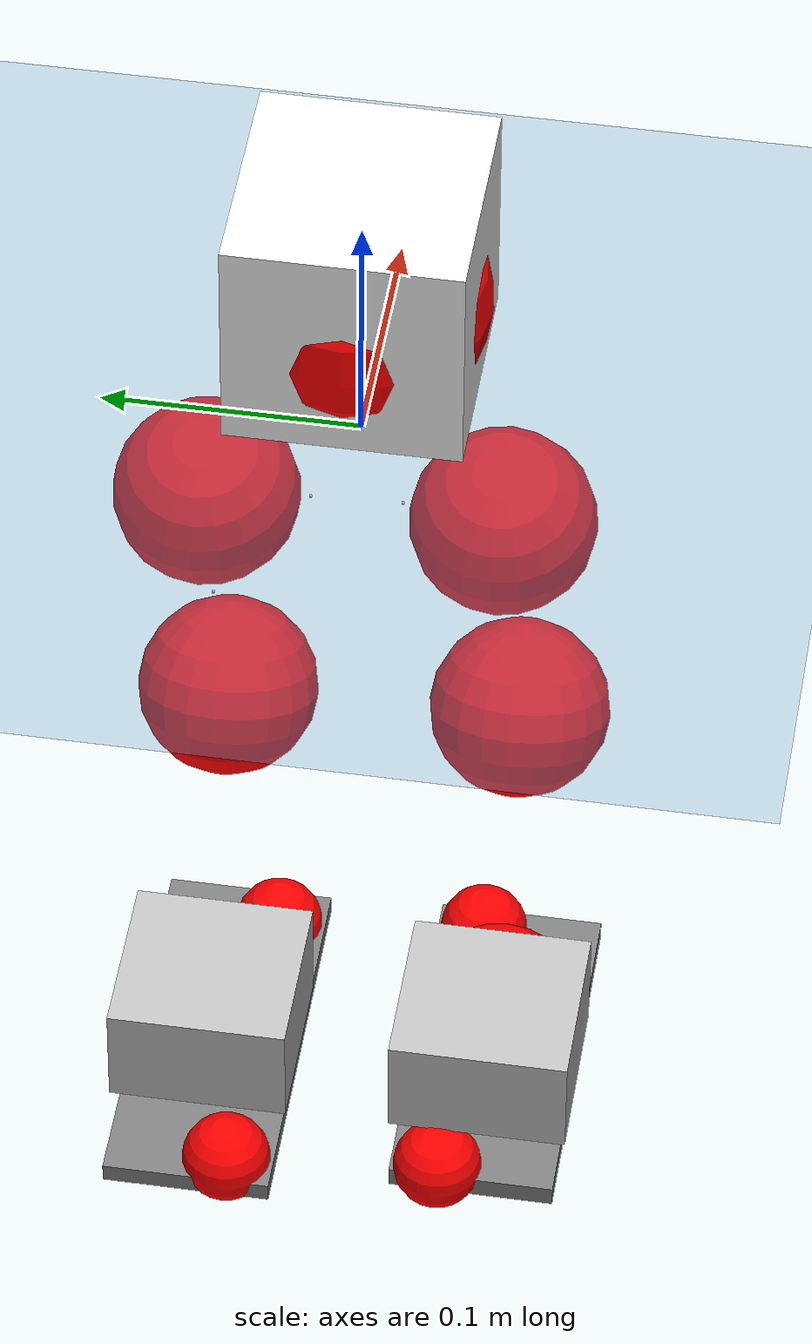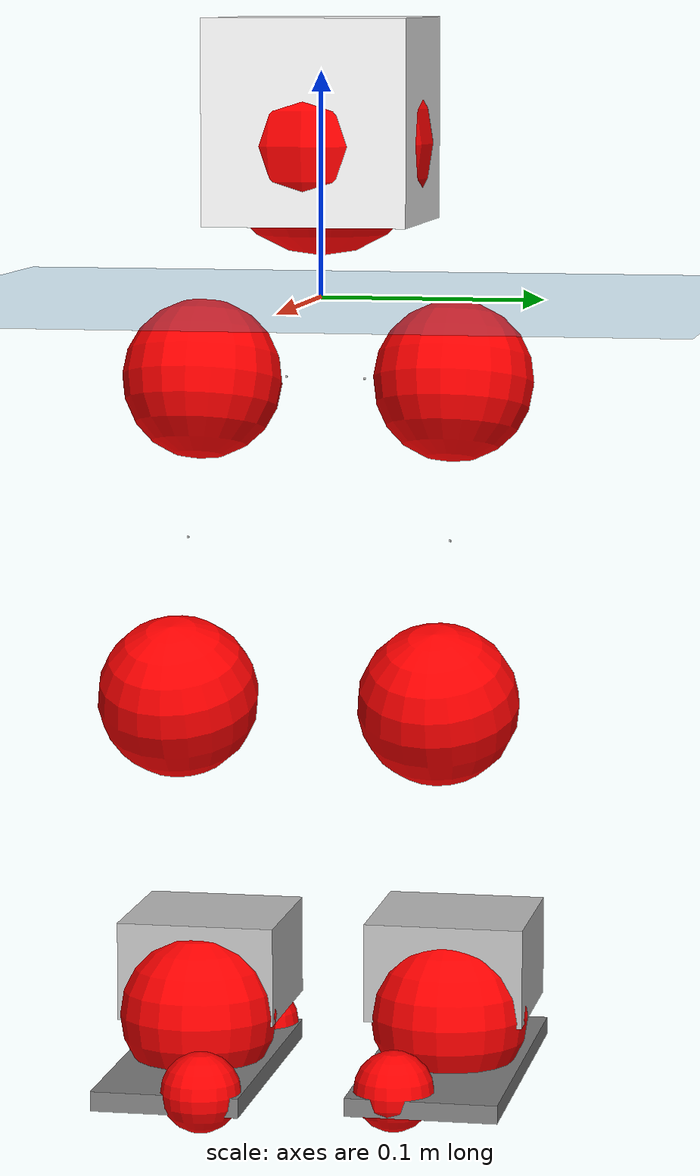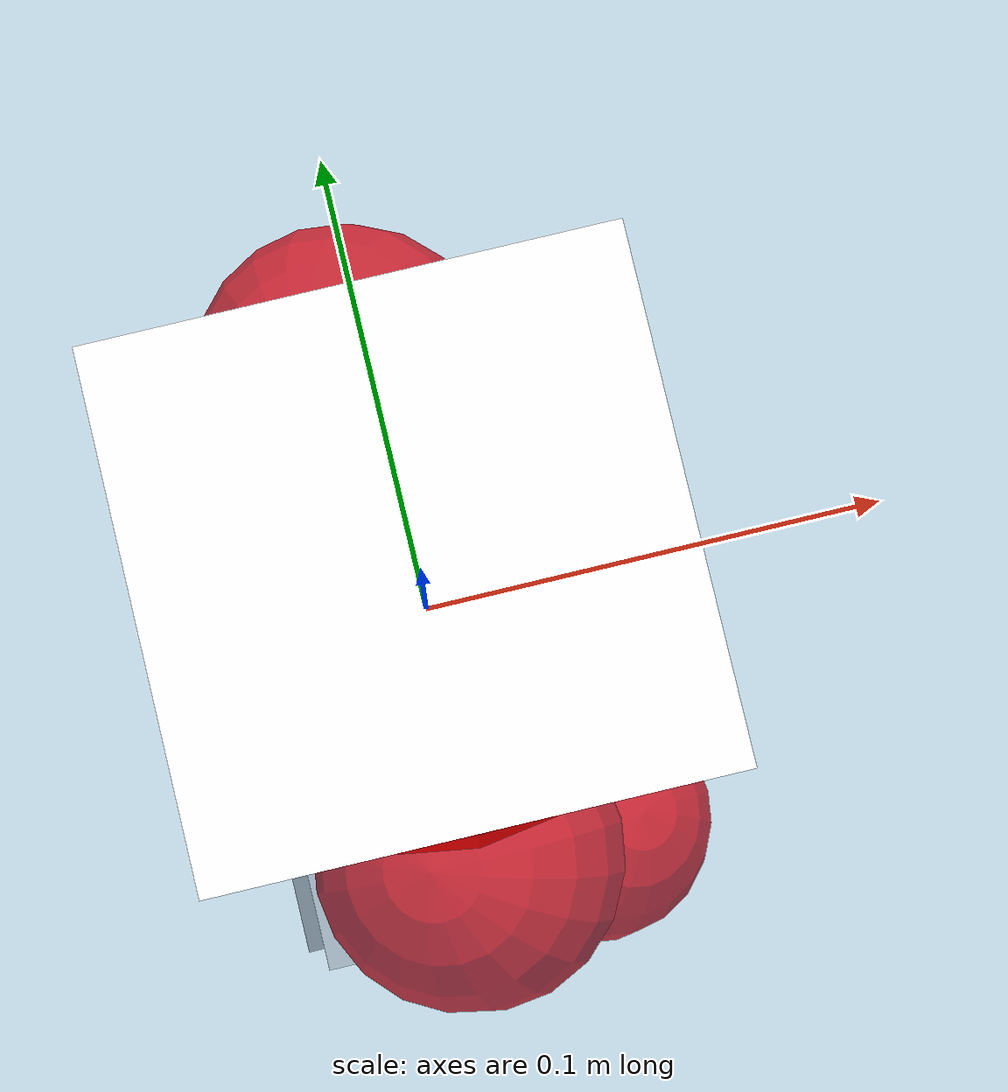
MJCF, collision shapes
<mujoco model="pi_12dof_release_v1">
  <compiler angle="radian" assetdir="assets" balanceinertia="true" inertiafromgeom="false"/>

  <option timestep="0.005" density="1.2" viscosity="2e-05"/>

  <size nkey="1"/>

  <visual>
    <quality shadowsize="8192"/>
    <map shadowclip="0.5"/>
  </visual>

  <default>
    <default class="/">
      <joint armature="0.01" damping="0.01" frictionloss="0.01"/>
      <geom contype="0" conaffinity="0" group="1" solref="-1000 -80"/>
      <site size="0.01 0.005 0.005" group="5"/>
      <general forcelimited="true" biastype="affine" gainprm="20" biasprm="0 -20 -0.5"/>
      <default class="foot">
        <geom size="0.0845 0.036 0.005" type="box" condim="6" group="4" priority="1" friction="0.9 0.2 0.2" solimp="0.015 1 0.005"/>
      </default>
      <default class="reward_collision_sphere">
        <geom group="5" rgba="1 0 0 1"/>
      </default>
    </default>
  </default>

  <asset>
    <texture type="skybox" colorspace="auto" name="//unnamed_texture_0" builtin="gradient" rgb1="0.95 0.95 0.95" rgb2="0.95 0.95 0.95" width="100" height="600"/>
    <texture type="2d" colorspace="auto" name="texplane" builtin="checker" rgb1="0.345 0.575 0.748" rgb2="0.345 0.575 0.748" markrgb="1 1 1" width="512" height="512"/>
    <material name="MatPlane" class="/" texture="texplane" texuniform="true" texrepeat="2 2" specular="0.9"/>
    <mesh name="baselink_1" class="/" file="baselink_1.STL"/>
    <mesh name="r_hip_pitch_link" class="/" file="r_hip_pitch_link.STL"/>
    <mesh name="r_hip_roll_link" class="/" file="r_hip_roll_link.STL"/>
    <mesh name="r_thigh_link" class="/" file="r_thigh_link.STL"/>
    <mesh name="r_calf_link" class="/" file="r_calf_link.STL"/>
    <mesh name="r_ankle_pitch_link" class="/" file="r_ankle_pitch_link.STL"/>
    <mesh name="r_ankle_roll_link" class="/" file="r_ankle_roll_link.STL"/>
    <mesh name="l_hip_pitch_link" class="/" file="l_hip_pitch_link.STL"/>
    <mesh name="l_hip_roll_link" class="/" file="l_hip_roll_link.STL"/>
    <mesh name="l_thigh_link" class="/" file="l_thigh_link.STL"/>
    <mesh name="l_calf_link" class="/" file="l_calf_link.STL"/>
    <mesh name="l_ankle_pitch_link" class="/" file="l_ankle_pitch_link.STL"/>
    <mesh name="l_ankle_roll_link" class="/" file="l_ankle_roll_link.STL"/>
  </asset>

  <worldbody>
    <geom name="floor" class="/" size="100 100 0.125" type="plane" group="0" material="MatPlane"/>
    <light name="toplight_shadow" class="/" pos="0 0 5" dir="0.0990148 0.0990148 -0.990148" type="directional" ambient="0.04 0.04 0.04" diffuse="0.55 0.55 0.55" specular="0.12 0.12 0.12"/>
    <light name="toplight_fill" class="/" pos="0 0 5" dir="0.0990148 0.0990148 -0.990148" type="directional" castshadow="false" ambient="0.04 0.04 0.04" diffuse="0.3 0.3 0.3" specular="0.08 0.08 0.08"/>
    <body name="trunk" pos="-0.000979276 0.000254018 -0.00279588" quat="1 0.00044067 -1.56864e-06 -0.000296588">
      <inertial pos="-0.000561654 -0.00302833 0.0427445" quat="0.695396 0.0140289 0.0111535 0.718403" mass="1.60998" diaginertia="0.00867712 0.00195538 0.0046787"/>
      <joint name="//unnamed_joint_0" type="free"/>
      <geom name="//unnamed_geom_1" class="/" type="mesh" density="0" rgba="1 1 1 1" mesh="baselink_1"/>
      <geom name="//unnamed_geom_2" class="/" size="0.0452075 0.0452075 0.0452075" pos="0 0 0.081175" type="box" rgba="1 1 1 1"/>
      <geom name="//unnamed_geom_3" class="reward_collision_sphere" size="0.0497283" pos="0 0 0.0710281"/>
      <site name="imu" class="/" pos="-0.00909222 0.00510413 0.0129099" size="0.0090415"/>
      <camera name="track" class="/" pos="0 -1.46401 0" quat="0.707107 0.707107 0 0" mode="trackcom"/>
      <camera name="ego_camera" class="/" pos="0.0724318 0 0.182644" quat="-0.5 -0.5 0.5 0.5"/>
      <body name="r_hip_pitch_link" pos="-0.000711298 -0.0166431 -0.0333349" quat="0.992135 -0.000427698 -0.125167 0.000993036">
        <inertial pos="0.00346881 -0.0436766 0.000530519" quat="-0.00823526 0.706549 -0.035076 0.706746" mass="0.265945" diaginertia="8.88262e-05 2.05357e-05 9.04273e-05"/>
        <joint name="r_hip_pitch_joint" class="/" pos="0 0 0" axis="0.0076835 -0.99997 0.00127559" stiffness="0.0063515" range="-1.74528 1.20383" armature="0.00825723" damping="0.00338752" frictionloss="0.0086151"/>
        <geom name="//unnamed_geom_4" class="/" type="mesh" density="0" rgba="0.75294 0.75294 0.75294 1" mesh="r_hip_pitch_link"/>
        <geom name="//unnamed_geom_5" class="/" size="0.000452075 0.000452075 0.000452075" type="box" rgba="0.75294 0.75294 0.75294 1"/>
        <body name="r_hip_roll_link" pos="-0.00208722 -0.0388301 -0.00129595" quat="1 9.69869e-05 -0.000324124 -7.83235e-05">
          <inertial pos="0.000793655 -0.000357177 -0.0595559" quat="0.705156 -0.0792416 -0.0829662 0.699709" mass="0.293819" diaginertia="0.00026978 5.80167e-05 0.000138248"/>
          <joint name="r_hip_roll_joint" class="/" pos="0 0 0" axis="-0.999966 -0.000843404 -0.00821982" range="-0.170661 0.516778" armature="0.00824145" damping="0.0115241" frictionloss="0.0103206"/>
          <geom name="//unnamed_geom_6" class="/" type="mesh" density="0" rgba="0.75294 0.75294 0.75294 1" mesh="r_hip_roll_link"/>
          <geom name="//unnamed_geom_7" class="/" size="0.000452075 0.000452075 0.000452075" type="box" rgba="0.75294 0.75294 0.75294 1"/>
          <geom name="//unnamed_geom_8" class="reward_collision_sphere" size="0.036166"/>
          <body name="r_thigh_link" pos="0.00284031 -0.00236544 -0.0721823" quat="0.999999 -7.416e-05 -8.31202e-05 -0.00125132">
            <inertial pos="0.000663251 0.000815433 -0.0482147" quat="0.737282 0.675585 -1.10912e-05 -9.85125e-05" mass="0.0811491" diaginertia="0.000101987 1.97962e-05 6.07834e-05"/>
            <joint name="r_thigh_joint" class="/" pos="0 0 0" axis="0.0160443 -0.000885134 -0.999871" stiffness="0.00718834" range="-0.281284 0.60774" armature="0.00919124" damping="0.00313091" frictionloss="0.00863834"/>
            <geom name="//unnamed_geom_9" class="/" type="mesh" density="0" rgba="0.75294 0.75294 0.75294 1" mesh="r_thigh_link"/>
            <geom name="//unnamed_geom_10" class="/" size="0.000452075 0.000452075 0.000452075" type="box" rgba="0.75294 0.75294 0.75294 1"/>
            <body name="r_calf_link" pos="-0.00260162 -0.00135484 -0.0712836" quat="0.947568 3.57861e-05 0.319555 0.000158723">
              <inertial pos="0.00224673 -0.000503561 -0.0713532" quat="0.999976 -0.00259705 -0.00164935 0.00624508" mass="0.621818" diaginertia="0.00298925 0.000783037 0.000193408"/>
              <joint name="r_calf_joint" class="/" pos="0 0 0" axis="-0.010042 -0.999949 0.00108838" stiffness="0.00108505" range="-1.63066 0.695548" armature="0.00779796" damping="0.0212519" frictionloss="0.00810287"/>
              <geom name="//unnamed_geom_11" class="/" type="mesh" density="0" rgba="0.75294 0.75294 0.75294 1" mesh="r_calf_link"/>
              <geom name="//unnamed_geom_12" class="/" size="0.000452075 0.000452075 0.000452075" type="box" rgba="0.75294 0.75294 0.75294 1"/>
              <geom name="//unnamed_geom_13" class="reward_collision_sphere" size="0.036166"/>
              <body name="r_ankle_pitch_link" pos="-0.000756453 0.0018538 -0.144212" quat="0.980025 -2.89641e-05 -0.198876 3.69238e-05">
                <inertial pos="0.0045897 0.00169108 0.000790773" quat="0.0127166 0.701648 -0.00511407 0.712392" mass="0.121903" diaginertia="0.000246211 4.64707e-05 0.000127294"/>
                <joint name="r_ankle_pitch_joint" class="/" pos="0 0 0" axis="0.000117831 -1 1.79581e-06" range="-1.29603 0.488045" armature="0.00931553" damping="0" frictionloss="0.00913345"/>
                <geom name="//unnamed_geom_14" class="/" type="mesh" density="0" rgba="0.75294 0.75294 0.75294 1" mesh="r_ankle_pitch_link"/>
                <geom name="//unnamed_geom_15" class="/" size="0.0352619 0.036166 0.0226038" type="box" rgba="0.75294 0.75294 0.75294 1"/>
                <body name="r_ankle_roll_link" pos="0.0767379 0.000538492 0.00125362" quat="1 0.000278763 -0.000166464 0.000167423">
                  <inertial pos="-0.0234988 -2.73894e-05 -0.0123357" quat="0.557121 0.434009 0.443437 0.551921" mass="0.389497" diaginertia="0.000931267 0.000210013 0.000303722"/>
                  <joint name="r_ankle_roll_joint" class="/" pos="0 0 0" axis="-0.999991 0.00257329 -0.00339112" range="-0.207149 0.181332" armature="0.00949605" damping="0" frictionloss="0.0102459"/>
                  <geom name="//unnamed_geom_16" class="/" type="mesh" density="0" rgba="0.75294 0.75294 0.75294 1" mesh="r_ankle_roll_link"/>
                  <geom name="//unnamed_geom_17" class="/" type="mesh" rgba="0.75294 0.75294 0.75294 1" mesh="r_ankle_roll_link"/>
                  <geom name="right_foot" class="foot" size="0.0732596 0.0334806 0.00443801" pos="-0.0492536 0 -0.0446462"/>
                  <geom name="//unnamed_geom_19" class="reward_collision_sphere" size="0.036166" pos="-0.0482879 0 -0.0202937"/>
                  <geom name="//unnamed_geom_20" class="reward_collision_sphere" size="0.018083" pos="0.0144864 0.0146401 -0.0405875"/>
                  <geom name="//unnamed_geom_21" class="reward_collision_sphere" size="0.018083" pos="-0.115891 0.0146401 -0.0405875"/>
                  <site name="right_foot" class="foot" pos="-0.0492536 0 -0.0446462" size="0.0090415"/>
                </body>
              </body>
            </body>
          </body>
        </body>
      </body>
      <body name="l_hip_pitch_link" pos="-0.00226535 0.0186708 -0.0336781" quat="0.992211 2.25927e-05 -0.124568 -0.000127186">
        <inertial pos="0.00292744 0.0417871 -0.00035422" quat="-0.0344984 0.713775 0.0337948 0.698708" mass="0.288176" diaginertia="0.000102973 2.18864e-05 0.000101306"/>
        <joint name="l_hip_pitch_joint" class="/" pos="0 0 0" axis="-0.0133817 0.999906 0.00290421" range="-1.29833 1.73735" armature="0.0100303" damping="0.00515155" frictionloss="0.00937997"/>
        <geom name="//unnamed_geom_22" class="/" type="mesh" density="0" rgba="0.75294 0.75294 0.75294 1" mesh="l_hip_pitch_link"/>
        <geom name="//unnamed_geom_23" class="/" size="0.000452075 0.000452075 0.000452075" type="box" rgba="0.75294 0.75294 0.75294 1"/>
        <body name="l_hip_roll_link" pos="-0.00272164 0.039828 -0.000110609" quat="1 -0.000142927 1.7917e-05 -0.000139964">
          <inertial pos="-0.00130271 0.00268353 -0.0612319" quat="0.698842 -0.0793514 -0.0762027 0.706765" mass="0.286497" diaginertia="0.000280205 5.64448e-05 0.000139045"/>
          <joint name="l_hip_roll_joint" class="/" pos="0 0 0" axis="-0.999943 0.00648171 -0.00854187" range="-0.462524 0.169319" armature="0.00866192" damping="0" frictionloss="0.00787578"/>
          <geom name="//unnamed_geom_24" class="/" type="mesh" density="0" rgba="0.75294 0.75294 0.75294 1" mesh="l_hip_roll_link"/>
          <geom name="//unnamed_geom_25" class="/" size="0.000452075 0.000452075 0.000452075" type="box" rgba="0.75294 0.75294 0.75294 1"/>
          <geom name="//unnamed_geom_26" class="reward_collision_sphere" size="0.036166"/>
          <body name="l_thigh_link" pos="-0.00289088 0.000938343 -0.0713391" quat="1 0.000118251 0.000137767 0.000586128">
            <inertial pos="0.000305167 -0.00126878 -0.0473876" quat="0.677549 0.73545 -8.55908e-05 0.00637869" mass="0.0838628" diaginertia="0.000104593 1.974e-05 6.12525e-05"/>
            <joint name="l_thigh_joint" class="/" pos="0 0 0" axis="0.00209183 -0.00551154 -0.999983" stiffness="0.00326408" range="-0.653765 0.349268" armature="0.00999939" damping="0" frictionloss="0.0102471"/>
            <geom name="//unnamed_geom_27" class="/" type="mesh" density="0" rgba="0.75294 0.75294 0.75294 1" mesh="l_thigh_link"/>
            <geom name="//unnamed_geom_28" class="/" size="0.000452075 0.000452075 0.000452075" type="box" rgba="0.75294 0.75294 0.75294 1"/>
            <body name="l_calf_link" pos="0.0002637 -0.00203721 -0.0729111" quat="0.947215 -0.000347546 0.320599 -0.000276651">
              <inertial pos="-0.00200743 0.00171205 -0.0683438" quat="0.999979 0.0032879 -0.000334713 0.00563505" mass="0.586865" diaginertia="0.00289649 0.000714002 0.000178055"/>
              <joint name="l_calf_joint" class="/" pos="0 0 0" axis="0.001352 0.999982 -0.00587029" range="-0.627643 1.62465" armature="0.00791135" damping="0.00602058" frictionloss="0.00789068"/>
              <geom name="//unnamed_geom_29" class="/" type="mesh" density="0" rgba="0.75294 0.75294 0.75294 1" mesh="l_calf_link"/>
              <geom name="//unnamed_geom_30" class="/" size="0.000452075 0.000452075 0.000452075" type="box" rgba="0.75294 0.75294 0.75294 1"/>
              <geom name="//unnamed_geom_31" class="reward_collision_sphere" size="0.036166"/>
              <body name="l_ankle_pitch_link" pos="-0.000937963 -0.00101369 -0.140014" quat="0.980086 -0.000214783 -0.198574 0.000353614">
                <inertial pos="0.0075993 -0.000628182 -0.000834402" quat="-0.00204858 0.70657 0.00178539 0.707638" mass="0.124293" diaginertia="0.000244932 4.5628e-05 0.000125718"/>
                <joint name="l_ankle_pitch_joint" class="/" pos="0 0 0" axis="0.00703867 0.999903 -0.0120479" range="-0.506444 1.31631" armature="0.00909538" damping="0" frictionloss="0.00964082"/>
                <geom name="//unnamed_geom_32" class="/" type="mesh" density="0" rgba="0.75294 0.75294 0.75294 1" mesh="l_ankle_pitch_link"/>
                <geom name="//unnamed_geom_33" class="/" size="0.0352619 0.036166 0.0226038" type="box" rgba="0.75294 0.75294 0.75294 1"/>
                <body name="l_ankle_roll_link" pos="0.0698258 0.000902238 2.48061e-05" quat="0.999999 -0.000133784 -0.000918389 -0.000404436">
                  <inertial pos="-0.0253463 -0.000246084 -0.0149182" quat="0.563153 0.424711 0.425456 0.566981" mass="0.3741" diaginertia="0.000911821 0.000221752 0.00030043"/>
                  <joint name="l_ankle_roll_joint" class="/" pos="0 0 0" axis="-0.999988 0.00326956 0.00366579" range="-0.149716 0.153415" armature="0.00874032" damping="0.00495293" frictionloss="0.00810185"/>
                  <geom name="//unnamed_geom_34" class="/" type="mesh" density="0" rgba="0.75294 0.75294 0.75294 1" mesh="l_ankle_roll_link"/>
                  <geom name="//unnamed_geom_35" class="/" type="mesh" rgba="0.75294 0.75294 0.75294 1" mesh="l_ankle_roll_link"/>
                  <geom name="left_foot" class="foot" size="0.0798229 0.0339928 0.00410213" pos="-0.0492536 0 -0.0446462"/>
                  <geom name="//unnamed_geom_37" class="reward_collision_sphere" size="0.036166" pos="-0.0482879 0 -0.0202937"/>
                  <geom name="//unnamed_geom_38" class="reward_collision_sphere" size="0.018083" pos="0.0144864 -0.0146401 -0.0405875"/>
                  <geom name="//unnamed_geom_39" class="reward_collision_sphere" size="0.018083" pos="-0.115891 -0.0146401 -0.0405875"/>
                  <site name="left_foot" class="foot" pos="-0.0492536 0 -0.0446462" size="0.0090415"/>
                </body>
              </body>
            </body>
          </body>
        </body>
      </body>
    </body>
  </worldbody>

  <contact>
    <pair class="/" geom1="floor" geom2="right_foot" name="//unnamed_contact_1"/>
    <pair class="/" geom1="floor" geom2="left_foot" name="//unnamed_contact_0"/>
  </contact>

  <actuator>
    <general name="r_hip_pitch_joint" class="/" joint="r_hip_pitch_joint" forcerange="-19.7747 19.7747" gainprm="18.508" biasprm="0 -18.508 -0.48007"/>
    <general name="r_hip_roll_joint" class="/" joint="r_hip_roll_joint" forcerange="-17.0586 17.0586" gainprm="18.508" biasprm="0 -18.508 -0.48007"/>
    <general name="r_thigh_joint" class="/" joint="r_thigh_joint" forcerange="-21.0426 21.0426" gainprm="18.508" biasprm="0 -18.508 -0.48007"/>
    <general name="r_calf_joint" class="/" joint="r_calf_joint" forcerange="-18.7887 18.7887" gainprm="18.508" biasprm="0 -18.508 -0.48007"/>
    <general name="r_ankle_pitch_joint" class="/" joint="r_ankle_pitch_joint" forcerange="-17.0057 17.0057" gainprm="18.508" biasprm="0 -18.508 -0.48007"/>
    <general name="r_ankle_roll_joint" class="/" joint="r_ankle_roll_joint" forcerange="-19.1703 19.1703" gainprm="18.508" biasprm="0 -18.508 -0.48007"/>
    <general name="l_hip_pitch_joint" class="/" joint="l_hip_pitch_joint" forcerange="-19.6286 19.6286" gainprm="18.508" biasprm="0 -18.508 -0.48007"/>
    <general name="l_hip_roll_joint" class="/" joint="l_hip_roll_joint" forcerange="-17.2731 17.2731" gainprm="18.508" biasprm="0 -18.508 -0.48007"/>
    <general name="l_thigh_joint" class="/" joint="l_thigh_joint" forcerange="-19.024 19.024" gainprm="18.508" biasprm="0 -18.508 -0.48007"/>
    <general name="l_calf_joint" class="/" joint="l_calf_joint" forcerange="-17.1099 17.1099" gainprm="18.508" biasprm="0 -18.508 -0.48007"/>
    <general name="l_ankle_pitch_joint" class="/" joint="l_ankle_pitch_joint" forcerange="-20.27 20.27" gainprm="18.508" biasprm="0 -18.508 -0.48007"/>
    <general name="l_ankle_roll_joint" class="/" joint="l_ankle_roll_joint" forcerange="-17.1166 17.1166" gainprm="18.508" biasprm="0 -18.508 -0.48007"/>
  </actuator>

  <sensor>
    <gyro site="imu" name="imu_angular_velocity"/>
    <velocimeter site="imu" name="imu_linear_velocity"/>
    <framelinvel objtype="site" objname="left_foot" name="left_foot_global_linear_velocity"/>
    <framelinvel objtype="site" objname="right_foot" name="right_foot_global_linear_velocity"/>
  </sensor>

  <keyframe>
    <key name="home" qpos="0 0 0.291 1 0 0 0 0.4 0 0 -0.8 0.4 0 -0.4 0 0 0.8 -0.4 0"/>
  </keyframe>
</mujoco>
